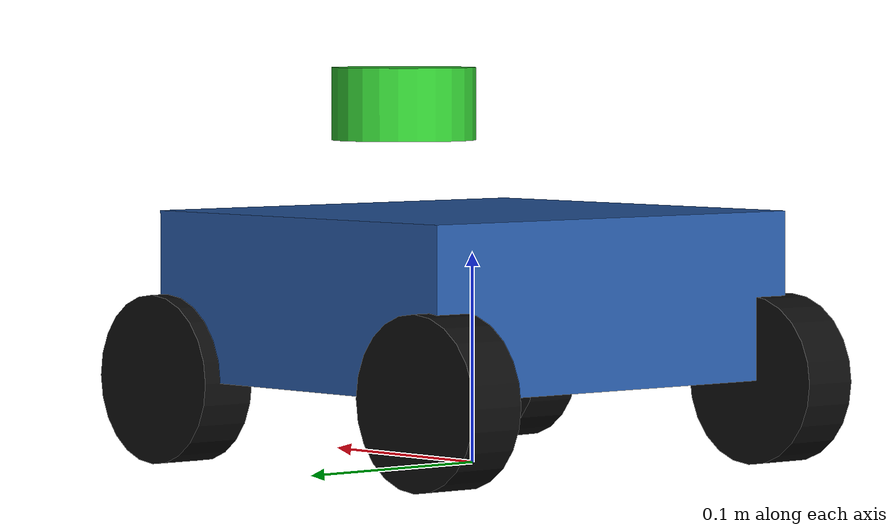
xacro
<?xml version="1.0"?>
<robot xmlns:xacro="http://www.ros.org/wiki/xacro" name="mdetect_robot">
  <xacro:property name="base_length" value="0.20"/>
  <xacro:property name="base_width" value="0.22"/>
  <xacro:property name="base_height" value="0.08"/>
  <xacro:property name="wheel_radius" value="0.04025"/>
  <xacro:property name="wheel_width" value="0.028"/>
  <xacro:property name="wheelbase" value="0.19"/>
  <xacro:property name="track" value="0.21"/>

  <material name="body"><color rgba="0.15 0.35 0.65 1"/></material>
  <material name="wheel"><color rgba="0.05 0.05 0.05 1"/></material>
  <material name="sensor"><color rgba="0.2 0.8 0.2 1"/></material>

  <link name="base_footprint"/>
  <joint name="base_footprint_joint" type="fixed">
    <parent link="base_footprint"/><child link="base_link"/>
    <origin xyz="0 0 ${wheel_radius}" rpy="0 0 0"/>
  </joint>

  <link name="base_link">
    <visual><origin xyz="0 0 ${base_height/2}"/><geometry><box size="${base_length} ${base_width} ${base_height}"/></geometry><material name="body"/></visual>
    <collision><origin xyz="0 0 ${base_height/2}"/><geometry><box size="${base_length} ${base_width} ${base_height}"/></geometry></collision>
    <inertial><origin xyz="0 0 ${base_height/2}"/><mass value="5.0"/><inertia ixx="0.025" ixy="0" ixz="0" iyy="0.025" iyz="0" izz="0.04"/></inertial>
  </link>

  <xacro:macro name="wheel" params="name x y">
    <link name="${name}_wheel_link">
      <visual><origin rpy="1.5708 0 0"/><geometry><cylinder radius="${wheel_radius}" length="${wheel_width}"/></geometry><material name="wheel"/></visual>
      <collision><origin rpy="1.5708 0 0"/><geometry><cylinder radius="${wheel_radius}" length="${wheel_width}"/></geometry></collision>
      <inertial><mass value="0.25"/><inertia ixx="0.0003" ixy="0" ixz="0" iyy="0.0003" iyz="0" izz="0.0003"/></inertial>
    </link>
    <joint name="${name}_wheel_joint" type="continuous">
      <parent link="base_link"/><child link="${name}_wheel_link"/>
      <origin xyz="${x} ${y} 0" rpy="0 0 0"/><axis xyz="0 1 0"/>
    </joint>
  </xacro:macro>

  <xacro:wheel name="front_left" x="${wheelbase/2}" y="${track/2}"/>
  <xacro:wheel name="front_right" x="${wheelbase/2}" y="${-track/2}"/>
  <xacro:wheel name="rear_right" x="${-wheelbase/2}" y="${-track/2}"/>
  <xacro:wheel name="rear_left" x="${-wheelbase/2}" y="${track/2}"/>

  <link name="laser">
    <visual><geometry><cylinder radius="0.035" length="0.035"/></geometry><material name="sensor"/></visual>
  </link>
  <joint name="laser_joint" type="fixed"><parent link="base_link"/><child link="laser"/><origin xyz="0.05 0 0.13" rpy="0 0 0"/></joint>

  <link name="imu_link"/>
  <joint name="imu_joint" type="fixed"><parent link="base_link"/><child link="imu_link"/><origin xyz="0 0 0.08" rpy="0 0 0"/></joint>
</robot>
